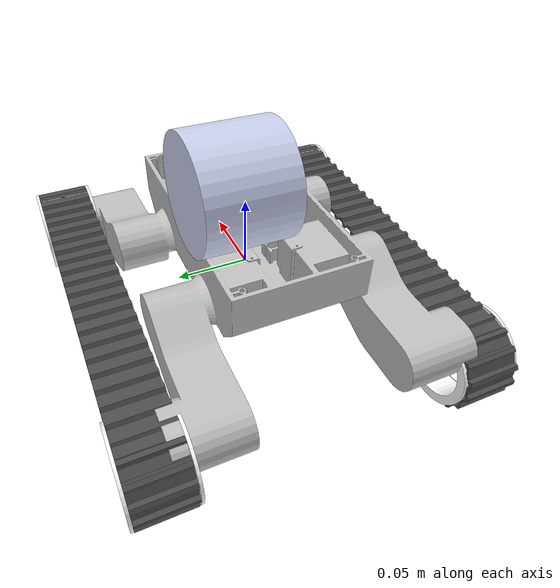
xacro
<?xml version="1.0" encoding="utf-8"?>

<robot
  name="rover" xmlns:xacro="http://www.ros.org/wiki/xacro">

   <xacro:include filename="inertial_macros.xacro"/>

      <material name="white">
        <color rgba="1 1 1 1"/>
    </material>

      <material name="orange">
        <color rgba="1 0.3 0.1 1"/>
    </material>

      <material name="blue">
        <color rgba="0.2 0.2 1 1"/>
    </material>

      <material name="black">
        <color rgba="0 0 0 1"/>
    </material>

  <link
    name="base_link">
    <inertial>
      <origin
        xyz="0.00130991626705053 3.49863639634E-08 -0.00547333121816359"
        rpy="0 0 0" />
      <mass
        value="0.84121706270277" />
      <inertia
        ixx="0.000471900739611814"
        ixy="-2.09182785151114E-08"
        ixz="-1.51956152423411E-05"
        iyy="0.00136894339262334"
        iyz="7.11926294463084E-07"
        izz="0.00158904161906431" />
    </inertial>
    <visual>
      <origin
        xyz="0 0 0"
        rpy="0 0 0" />
      <geometry>
        <mesh
          filename="file:///home/anonymous/dev_ws/src/rover/meshes/base_link.STL" />
      </geometry>
      <material
        name="">
        <color
          rgba="0.752941176470588 0.752941176470588 0.752941176470588 1" />
      </material>
    </visual>
    <collision>
      <origin
        xyz="0 0 0"
        rpy="0 0 0" />
      <geometry>
        <mesh
          filename="file:///home/anonymous/dev_ws/src/rover/meshes/base_link.STL" />
      </geometry>
    </collision>
  </link>

  <joint name="base_footprint_joint" type="fixed">
        <parent link="base_link"/>
        <child link="base_footprint"/>
        <origin xyz="0 0 0" rpy="0 0 0"/>
    </joint>

  <link name="base_footprint">

  </link>

  <link
    name="front_right_wheel">
    <inertial>
      <origin
        xyz="-8.80747905163126E-12 -4.55740861715626E-11 -0.018857267595084"
        rpy="0 0 0" />
      <mass
        value="0.0169810669319342" />
      <inertia
        ixx="6.69284229296301E-06"
        ixy="-1.60145736496364E-14"
        ixz="-3.42445131611552E-14"
        iyy="6.69284232761491E-06"
        iyz="6.23321768620798E-15"
        izz="9.06807752001078E-06" />
    </inertial>
    <visual>
      <origin
        xyz="0 0 0"
        rpy="0 0 0" />
      <geometry>
        <mesh
          filename="file:///home/anonymous/dev_ws/src/rover/meshes/front_right_wheel.STL" />
      </geometry>
      <material
        name="">
        <color
          rgba="1 1 1 1" />
      </material>
    </visual>
    <collision>
      <origin
        xyz="0 0 0"
        rpy="0 0 0" />
      <geometry>
        <mesh
          filename="file:///home/anonymous/dev_ws/src/rover/meshes/front_right_wheel.STL" />
      </geometry>
    </collision>
  </link>

  <gazebo reference="front_right_wheel">
    <material>Gazebo/White</material>
    <mu1>1</mu1>
    <mu2>1</mu2>
    <kp>500000.0</kp>
    <kd>100.0</kd>
    <minDepth>0.001</minDepth>
    <maxVel>0.1</maxVel>
  </gazebo>

  <joint
    name="base_link_to_front_right_wheel"
    type="continuous">
    <origin
      xyz="0.117290515707591 -0.127 -0.025435192502925"
      rpy="1.5707963267949 -1.5707963267949 0" />
    <parent
      link="base_link" />
    <child
      link="front_right_wheel" />
    <axis
      xyz="0 0 -1" />
  </joint>

  <link
    name="front_left_wheel">
    <inertial>
      <origin
        xyz="-3.26679655549E-11 -3.29753273298206E-11 -0.018857267595084"
        rpy="0 0 0" />
      <mass
        value="0.0169810669319342" />
      <inertia
        ixx="6.69284228887819E-06"
        ixy="9.91131187039994E-15"
        ixz="-2.49917727791211E-14"
        iyy="6.69284233169973E-06"
        iyz="2.42270679512842E-14"
        izz="9.06807752001078E-06" />
    </inertial>
    <visual>
      <origin
        xyz="0 0 0"
        rpy="0 0 0" />
      <geometry>
        <mesh
          filename="file:///home/anonymous/dev_ws/src/rover/meshes/front_left_wheel.STL" />
      </geometry>
      <material
        name="">
        <color
          rgba="1 1 1 1" />
      </material>
    </visual>
    <collision>
      <origin
        xyz="0 0 0"
        rpy="0 0 0" />
      <geometry>
        <mesh
          filename="file:///home/anonymous/dev_ws/src/rover/meshes/front_left_wheel.STL" />
      </geometry>
    </collision>
  </link>
    <gazebo reference="front_left_wheel">
    <material>Gazebo/White</material>
    <mu1>1</mu1>
    <mu2>1</mu2>
    <kp>500000.0</kp>
    <kd>100.0</kd>
    <minDepth>0.001</minDepth>
    <maxVel>0.1</maxVel>

  </gazebo>

  <joint
    name="base_link_to_front_left_wheel"
    type="continuous">
    <origin
      xyz="0.1188588681311 0.127 -0.019031967432299"
      rpy="1.5707963267949 0 3.14159265358979" />
    <parent
      link="base_link" />
    <child
      link="front_left_wheel" />
    <axis
      xyz="0 0 1" />
  </joint>

  <link
    name="bottom_right_wheel">
    <inertial>
      <origin
        xyz="2.91839330479604E-11 -3.60952205624709E-11 -0.018857267595084"
        rpy="0 0 0" />
      <mass
        value="0.0169810669319343" />
      <inertia
        ixx="6.69284232901609E-06"
        ixy="-1.43509531578498E-14"
        ixz="-2.68277877855762E-14"
        iyy="6.69284229156184E-06"
        iyz="-2.21767763622839E-14"
        izz="9.06807752001078E-06" />
    </inertial>
    <visual>
      <origin
        xyz="0 0 0"
        rpy="0 0 0" />
      <geometry>
        <mesh
          filename="file:///home/anonymous/dev_ws/src/rover/meshes/bottom_right_wheel.STL" />
      </geometry>
      <material
        name="">
        <color
          rgba="1 1 1 1" />
      </material>
    </visual>
    <collision>
      <origin
        xyz="0 0 0"
        rpy="0 0 0" />
      <geometry>
        <mesh
          filename="file:///home/anonymous/dev_ws/src/rover/meshes/bottom_right_wheel.STL" />
      </geometry>
    </collision>
  </link>

  <gazebo reference="bottom_right_wheel">
    <mu1>1</mu1>
    <mu2>1</mu2>
    <kp>500000.0</kp>
    <kd>100.0</kd>
    <minDepth>0.001</minDepth>
    <maxVel>0.1</maxVel>

  </gazebo>

  <joint
    name="base_link_bottom_right_wheel"
    type="continuous">
    <origin
      xyz="-0.113531519133702 -0.127 -0.029415678198117"
      rpy="1.5707963267949 0 0" />
    <parent
      link="base_link" />
    <child
      link="bottom_right_wheel" />
    <axis
      xyz="0 0 -1" />
  </joint>

  <link
    name="bottom_left_wheel">
    <inertial>
      <origin
        xyz="-1.02048924865983E-11 4.52816482227059E-11 -0.018857267595084"
        rpy="0 0 0" />
      <mass
        value="0.0169810669319342" />
      <inertia
        ixx="6.69284231029886E-06"
        ixy="-2.35935358805743E-14"
        ixz="3.38705121898742E-14"
        iyy="6.69284231027906E-06"
        iyz="8.02048066322904E-15"
        izz="9.06807752001078E-06" />
    </inertial>
    <visual>
      <origin
        xyz="0 0 0"
        rpy="0 0 0" />
      <geometry>
        <mesh
          filename="file:///home/anonymous/dev_ws/src/rover/meshes/bottom_left_wheel.STL" />
      </geometry>
      <material
        name="">
        <color
          rgba="1 1 1 1" />
      </material>
    </visual>
    <collision>
      <origin
        xyz="0 0 0"
        rpy="0 0 0" />
      <geometry>
        <mesh
          filename="file:///home/anonymous/dev_ws/src/rover/meshes/bottom_left_wheel.STL" />
      </geometry>
    </collision>
  </link>

  <gazebo reference="bottom_left_wheel">
    <material>Gazebo/White</material>
    <mu1>1</mu1>
    <mu2>1</mu2>
    <kp>500000.0</kp>
    <kd>100.0</kd>
    <minDepth>0.001</minDepth>
    <maxVel>0.1</maxVel>
  </gazebo>

  <joint
    name="base_link_to_bottom_left_wheel"
    type="continuous">
    <origin
      xyz="-0.115435440029406 0.127 -0.023104093147408"
      rpy="1.5707963267949 0 3.14159265358979" />
    <parent
      link="base_link" />
    <child
      link="bottom_left_wheel" />
    <axis
      xyz="0 0 1" />
  </joint>

  <link
    name="right_tread">
    <inertial>
      <origin
        xyz="-0.00948575511995705 -0.0271678464476261 -1.38777878078145E-17"
        rpy="0 0 0" />
      <mass
        value="0.0467186064325547" />
      <inertia
        ixx="5.36340024147205E-06"
        ixy="-8.04600395062877E-10"
        ixz="1.92734666229232E-23"
        iyy="5.40913175843456E-06"
        iyz="-4.87566527484439E-22"
        izz="1.12903298878672E-07" />
    </inertial>
    <visual>
      <origin
        xyz="0 0 0"
        rpy="0 0 0" />
      <geometry>
        <mesh
          filename="file:///home/anonymous/dev_ws/src/rover/meshes/right_tread.STL" />
      </geometry>
      <material
        name="">
        <color
          rgba="0.298039215686275 0.298039215686275 0.298039215686275 1" />
      </material>
    </visual>
    <collision>
      <origin
        xyz="0 0 0"
        rpy="0 0 0" />
      <geometry>
        <mesh
          filename="file:///home/anonymous/dev_ws/src/rover/meshes/right_tread.STL" />
      </geometry>
    </collision>
  </link>

   <gazebo reference="right_tread">
    <material>Gazebo/Black</material>
    <mu1>1</mu1>
    <mu2>1</mu2>
    <kp>500000.0</kp>
    <kd>100.0</kd>
    <minDepth>0.001</minDepth>
    <maxVel>0.1</maxVel>
  </gazebo>

  <joint
    name="base_link_right_tread"
    type="fixed">
    <origin
      xyz="0.00929378954049227 -0.1065 -0.000296284357995884"
      rpy="1.5707963267949 0 0" />
    <parent
      link="base_link" />
    <child
      link="right_tread" />
    <axis
      xyz="0 0 0" />
  </joint>

  <link
    name="left_tread">
    <inertial>
      <origin
        xyz="0.00948575511995705 -0.0271678464476261 -4.16333634234434E-17"
        rpy="0 0 0" />
      <mass
        value="0.0467186064325548" />
      <inertia
        ixx="5.36340024147206E-06"
        ixy="8.04600395063005E-10"
        ixz="2.06402228351984E-22"
        iyy="5.40913175843456E-06"
        iyz="6.33254843981324E-22"
        izz="1.12903298878674E-07" />
    </inertial>
    <visual>
      <origin
        xyz="0 0 0"
        rpy="0 0 0" />
      <geometry>
        <mesh
          filename="file:///home/anonymous/dev_ws/src/rover/meshes/left_tread.STL" />
      </geometry>
      <material
        name="">
        <color
          rgba="0.298039215686275 0.298039215686275 0.298039215686275 1" />
      </material>
    </visual>
    <collision>
      <origin
        xyz="0 0 0"
        rpy="0 0 0" />
      <geometry>
        <mesh
          filename="file:///home/anonymous/dev_ws/src/rover/meshes/left_tread.STL" />
      </geometry>
    </collision>
  </link>

  <gazebo reference="left_tread">
    <material>Gazebo/Black</material>
    <mu1>1</mu1>
    <mu2>1</mu2>
    <kp>500000.0</kp>
    <kd>100.0</kd>
    <minDepth>0.001</minDepth>
    <maxVel>0.1</maxVel>
  </gazebo>

  <joint
    name="base_link_to_left_tread"
    type="fixed">
    <origin
      xyz="0.010862 0.1065 0.0061069"
      rpy="1.5708 0 3.1416" />
    <parent
      link="base_link" />
    <child
      link="left_tread" />
    <axis
      xyz="0 0 0" />
  </joint>

<link
    name="lidar_link">
    <inertial>
      <origin
        xyz="-0.0117859751324053 0.000349788585097272 -0.0355014011507976"
        rpy="0 0 0" />
      <mass
        value="0.0941041819038163" />
      <inertia
        ixx="2.79092003984224E-05"
        ixy="-5.25179850964557E-08"
        ixz="3.35338182344348E-07"
        iyy="4.43526963180453E-05"
        iyz="-2.48732549504887E-08"
        izz="6.94753921889465E-05" />
    </inertial>
    <visual>
      <origin
        xyz="0 0 0"
        rpy="0 0 0" />
      <geometry>
        <mesh
          filename="file:///home/anonymous/dev_ws/src/rover/meshes/lidar_link.STL" />
      </geometry>
      <material
        name="">
        <color
          rgba="0.792156862745098 0.819607843137255 0.933333333333333 1" />
      </material>
    </visual>
    <collision>
      <origin
        xyz="0 0 0"
        rpy="0 0 0" />
      <geometry>
        <mesh
          filename="file:///home/anonymous/dev_ws/src/rover/meshes/lidar_link.STL" />
      </geometry>
    </collision>
  </link>
  <joint
    name="base_link_to_lidar_link"
    type="fixed">
    <origin
      xyz="-0.044901 0.0003607 0.094632"
      rpy="0.0174533 -0.0174533 0" />
    <parent
      link="base_link" />
    <child
      link="lidar_link" />
    <axis
      xyz="0 0 0" />
  </joint>

  <gazebo reference="lidar_link">
    <material>Gazebo/Black</material>
  </gazebo>

</robot>
